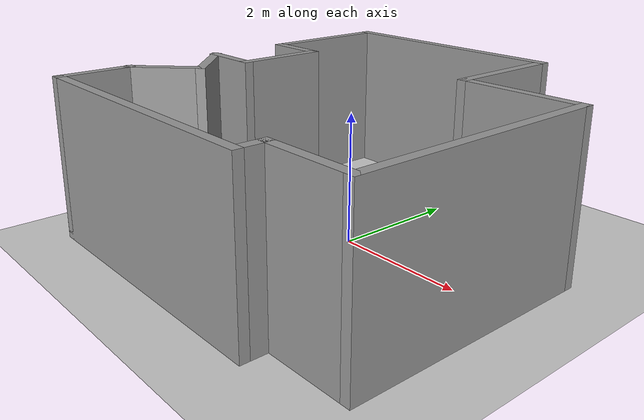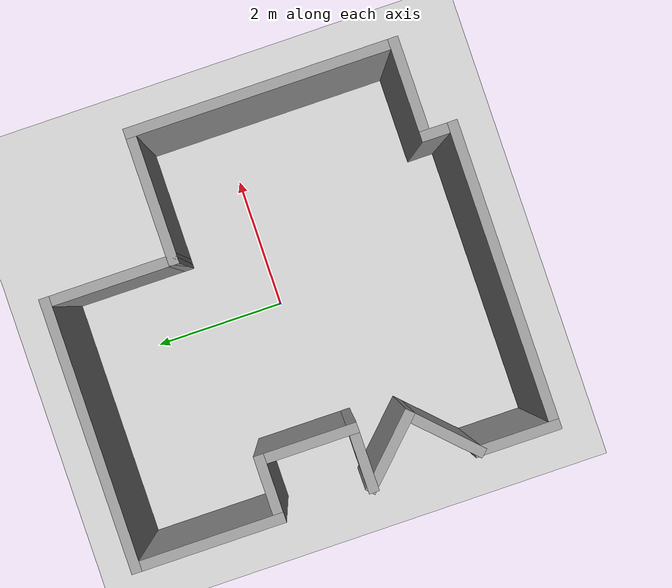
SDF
<sdf version="1.6">
 <world name="default">
  <light name="sun" type="directional">
   <pose>0 0 10 0 -0 0</pose>
   <diffuse>0.8 0.8 0.8 1</diffuse>
   <specular>0.2 0.2 0.2 1</specular>
   <attenuation>
    <range>1000</range>
    <constant>0.9</constant>
    <linear>0.01</linear>
    <quadratic>0.001</quadratic>
   </attenuation>
   <direction>-0.5 0.1 -0.9</direction>
  </light>
  <model name="ground_plane">
   <static>1</static>
   <link name="link">
    <collision name="collision">
     <geometry><plane><normal>0 0 1</normal><size>100 100</size></plane></geometry>
     <surface><friction><ode><mu>100</mu><mu2>50</mu2></ode></friction></surface>
    </collision>
    <visual name="visual">
     <cast_shadows>0</cast_shadows>
     <geometry><plane><normal>0 0 1</normal><size>100 100</size></plane></geometry>
     <material>
      <script><uri>file://media/materials/scripts/gazebo.material</uri><name>Gazebo/Grey</name></script>
     </material>
    </visual>
   </link>
  </model>
  <gravity>0 0 -9.8</gravity>
  <magnetic_field>6e-06 2.3e-05 -4.2e-05</magnetic_field>
  <atmosphere type="adiabatic"/>
  <physics name="default_physics" default="0" type="ode">
   <max_step_size>0.001</max_step_size>
   <real_time_factor>1</real_time_factor>
   <real_time_update_rate>1000</real_time_update_rate>
  </physics>
  <scene><ambient>0.4 0.4 0.4 1</ambient><background>0.7 0.7 0.7 1</background><shadows>1</shadows></scene>
  <spherical_coordinates>
   <surface_model>EARTH_WGS84</surface_model>
   <latitude_deg>0</latitude_deg>
   <longitude_deg>0</longitude_deg>
   <elevation>0</elevation>
   <heading_deg>0</heading_deg>
  </spherical_coordinates>
  <model name="mapa_calibracion">
   <pose>0.022693 -0.017344 0 0 -0 0</pose>
   <link name="Wall_10">
    <collision name="Wall_10_Collision">
     <geometry><box><size>4 0.15 2.5</size></box></geometry>
     <pose>0 0 1.25 0 -0 0</pose>
    </collision>
    <visual name="Wall_10_Visual">
     <pose>0 0 1.25 0 -0 0</pose>
     <geometry><box><size>4 0.15 2.5</size></box></geometry>
     <material>
      <script><uri>file://media/materials/scripts/gazebo.material</uri><name>Gazebo/Grey</name></script>
      <ambient>1 1 1 1</ambient>
     </material>
     <meta><layer>0</layer></meta>
    </visual>
    <pose>-0.909467 3.05282 0 0 -0 3.14159</pose>
   </link>
   <link name="Wall_11">
    <collision name="Wall_11_Collision">
     <geometry><box><size>2.25 0.15 2.5</size></box></geometry>
     <pose>0 0 1.25 0 -0 0</pose>
    </collision>
    <visual name="Wall_11_Visual">
     <pose>0 0 1.25 0 -0 0</pose>
     <geometry><box><size>2.25 0.15 2.5</size></box></geometry>
     <material>
      <script><uri>file://media/materials/scripts/gazebo.material</uri><name>Gazebo/Grey</name></script>
      <ambient>1 1 1 1</ambient>
     </material>
     <meta><layer>0</layer></meta>
    </visual>
    <pose>-2.83447 2.00282 0 0 0 -1.5708</pose>
   </link>
   <link name="Wall_12">
    <collision name="Wall_12_Collision">
     <geometry><box><size>1 0.15 2.5</size></box></geometry>
     <pose>0 0 1.25 0 -0 0</pose>
    </collision>
    <visual name="Wall_12_Visual">
     <pose>0 0 1.25 0 -0 0</pose>
     <geometry><box><size>1 0.15 2.5</size></box></geometry>
     <material>
      <script><uri>file://media/materials/scripts/gazebo.material</uri><name>Gazebo/Grey</name></script>
      <ambient>1 1 1 1</ambient>
     </material>
     <meta><layer>0</layer></meta>
    </visual>
    <pose>-2.40947 0.952817 0 0 -0 0</pose>
   </link>
   <link name="Wall_13">
    <collision name="Wall_13_Collision">
     <geometry><box><size>1.5 0.15 2.5</size></box></geometry>
     <pose>0 0 1.25 0 -0 0</pose>
    </collision>
    <visual name="Wall_13_Visual">
     <pose>0 0 1.25 0 -0 0</pose>
     <geometry><box><size>1.5 0.15 2.5</size></box></geometry>
     <material>
      <script><uri>file://media/materials/scripts/gazebo.material</uri><name>Gazebo/Grey</name></script>
      <ambient>1 1 1 1</ambient>
     </material>
     <meta><layer>0</layer></meta>
    </visual>
    <pose>-1.98447 0.277817 0 0 0 -1.5708</pose>
   </link>
   <link name="Wall_14">
    <collision name="Wall_14_Collision">
     <geometry><box><size>1 0.15 2.5</size></box></geometry>
     <pose>0 0 1.25 0 -0 0</pose>
    </collision>
    <visual name="Wall_14_Visual">
     <pose>0 0 1.25 0 -0 0</pose>
     <geometry><box><size>1 0.15 2.5</size></box></geometry>
     <material>
      <script><uri>file://media/materials/scripts/gazebo.material</uri><name>Gazebo/Grey</name></script>
      <ambient>1 1 1 1</ambient>
     </material>
     <meta><layer>0</layer></meta>
    </visual>
    <pose>-2.40947 -0.397183 0 0 -0 3.14159</pose>
   </link>
   <link name="Wall_15">
    <collision name="Wall_15_Collision">
     <geometry><box><size>1.25 0.15 2.5</size></box></geometry>
     <pose>0 0 1.25 0 -0 0</pose>
    </collision>
    <visual name="Wall_15_Visual">
     <pose>0 0 1.25 0 -0 0</pose>
     <geometry><box><size>1.25 0.15 2.5</size></box></geometry>
     <material>
      <script><uri>file://media/materials/scripts/gazebo.material</uri><name>Gazebo/Grey</name></script>
      <ambient>1 1 1 1</ambient>
     </material>
     <meta><layer>0</layer></meta>
    </visual>
    <pose>-2.44556 -0.786091 0 0 0 -0.785398</pose>
   </link>
   <link name="Wall_16">
    <collision name="Wall_16_Collision">
     <geometry><box><size>1.25 0.15 2.5</size></box></geometry>
     <pose>0 0 1.25 0 -0 0</pose>
    </collision>
    <visual name="Wall_16_Visual">
     <pose>0 0 1.25 0 -0 0</pose>
     <geometry><box><size>1.25 0.15 2.5</size></box></geometry>
     <material>
      <script><uri>file://media/materials/scripts/gazebo.material</uri><name>Gazebo/Grey</name></script>
      <ambient>1 1 1 1</ambient>
     </material>
     <meta><layer>0</layer></meta>
    </visual>
    <pose>-2.44556 -1.56391 0 0 0 -2.35619</pose>
   </link>
   <link name="Wall_17">
    <collision name="Wall_17_Collision">
     <geometry><box><size>1.25 0.15 2.5</size></box></geometry>
     <pose>0 0 1.25 0 -0 0</pose>
    </collision>
    <visual name="Wall_17_Visual">
     <pose>0 0 1.25 0 -0 0</pose>
     <geometry><box><size>1.25 0.15 2.5</size></box></geometry>
     <material>
      <script><uri>file://media/materials/scripts/gazebo.material</uri><name>Gazebo/Grey</name></script>
      <ambient>1 1 1 1</ambient>
     </material>
     <meta><layer>0</layer></meta>
    </visual>
    <pose>-2.83447 -2.50282 0 0 0 -1.5708</pose>
   </link>
   <link name="Wall_18">
    <collision name="Wall_18_Collision">
     <geometry><box><size>4.5 0.15 2.5</size></box></geometry>
     <pose>0 0 1.25 0 -0 0</pose>
    </collision>
    <visual name="Wall_18_Visual">
     <pose>0 0 1.25 0 -0 0</pose>
     <geometry><box><size>4.5 0.15 2.5</size></box></geometry>
     <material>
      <script><uri>file://media/materials/scripts/gazebo.material</uri><name>Gazebo/Grey</name></script>
      <ambient>1 1 1 1</ambient>
     </material>
     <meta><layer>0</layer></meta>
    </visual>
    <pose>-0.659467 -3.05282 0 0 -0 0</pose>
   </link>
   <link name="Wall_20">
    <collision name="Wall_20_Collision">
     <geometry><box><size>0.555635 0.15 2.5</size></box></geometry>
     <pose>0 0 1.25 0 -0 0</pose>
    </collision>
    <visual name="Wall_20_Visual">
     <pose>0 0 1.25 0 -0 0</pose>
     <geometry><box><size>0.555635 0.15 2.5</size></box></geometry>
     <material>
      <script><uri>file://media/materials/scripts/gazebo.material</uri><name>Gazebo/Grey</name></script>
      <ambient>1 1 1 1</ambient>
     </material>
     <meta><layer>0</layer></meta>
    </visual>
    <pose>1.51553 -2.85 0 0 -0 1.5708</pose>
   </link>
   <link name="Wall_4">
    <collision name="Wall_4_Collision">
     <geometry><box><size>1.5 0.15 2.5</size></box></geometry>
     <pose>0 0 1.25 0 -0 0</pose>
    </collision>
    <visual name="Wall_4_Visual">
     <pose>0 0 1.25 0 -0 0</pose>
     <geometry><box><size>1.5 0.15 2.5</size></box></geometry>
     <material>
      <script><uri>file://media/materials/scripts/gazebo.material</uri><name>Gazebo/Grey</name></script>
      <ambient>1 1 1 1</ambient>
     </material>
     <meta><layer>0</layer></meta>
    </visual>
    <pose>2.19053 -2.64718 0 0 -0 0</pose>
   </link>
   <link name="Wall_5">
    <collision name="Wall_5_Collision">
     <geometry><box><size>4 0.15 2.5</size></box></geometry>
     <pose>0 0 1.25 0 -0 0</pose>
    </collision>
    <visual name="Wall_5_Visual">
     <pose>0 0 1.25 0 -0 0</pose>
     <geometry><box><size>4 0.15 2.5</size></box></geometry>
     <material>
      <script><uri>file://media/materials/scripts/gazebo.material</uri><name>Gazebo/Grey</name></script>
      <ambient>1 1 1 1</ambient>
     </material>
     <meta><layer>0</layer></meta>
    </visual>
    <pose>2.86553 -0.722183 0 0 -0 1.5708</pose>
   </link>
   <link name="Wall_6">
    <collision name="Wall_6_Collision">
     <geometry><box><size>2 0.15 2.5</size></box></geometry>
     <pose>0 0 1.25 0 -0 0</pose>
    </collision>
    <visual name="Wall_6_Visual">
     <pose>0 0 1.25 0 -0 0</pose>
     <geometry><box><size>2 0.15 2.5</size></box></geometry>
     <material>
      <script><uri>file://media/materials/scripts/gazebo.material</uri><name>Gazebo/Grey</name></script>
      <ambient>1 1 1 1</ambient>
     </material>
     <meta><layer>0</layer></meta>
    </visual>
    <pose>1.94053 1.20282 0 0 -0 3.14159</pose>
   </link>
   <link name="Wall_7">
    <collision name="Wall_7_Collision">
     <geometry><box><size>0.15 0.15 2.5</size></box></geometry>
     <pose>0 0 1.25 0 -0 0</pose>
    </collision>
    <visual name="Wall_7_Visual">
     <pose>0 0 1.25 0 -0 0</pose>
     <geometry><box><size>0.15 0.15 2.5</size></box></geometry>
     <material>
      <script><uri>file://media/materials/scripts/gazebo.material</uri><name>Gazebo/Grey</name></script>
      <ambient>1 1 1 1</ambient>
     </material>
     <meta><layer>0</layer></meta>
    </visual>
    <pose>1.01553 1.20282 0 0 -0 0</pose>
   </link>
   <link name="Wall_9">
    <collision name="Wall_9_Collision">
     <geometry><box><size>2 0.15 2.5</size></box></geometry>
     <pose>0 0 1.25 0 -0 0</pose>
    </collision>
    <visual name="Wall_9_Visual">
     <pose>0 0 1.25 0 -0 0</pose>
     <geometry><box><size>2 0.15 2.5</size></box></geometry>
     <material>
      <script><uri>file://media/materials/scripts/gazebo.material</uri><name>Gazebo/Grey</name></script>
      <ambient>1 1 1 1</ambient>
     </material>
     <meta><layer>0</layer></meta>
    </visual>
    <pose>1.01553 2.12782 0 0 -0 1.5708</pose>
   </link>
   <static>1</static>
  </model>
 </world>
</sdf>
